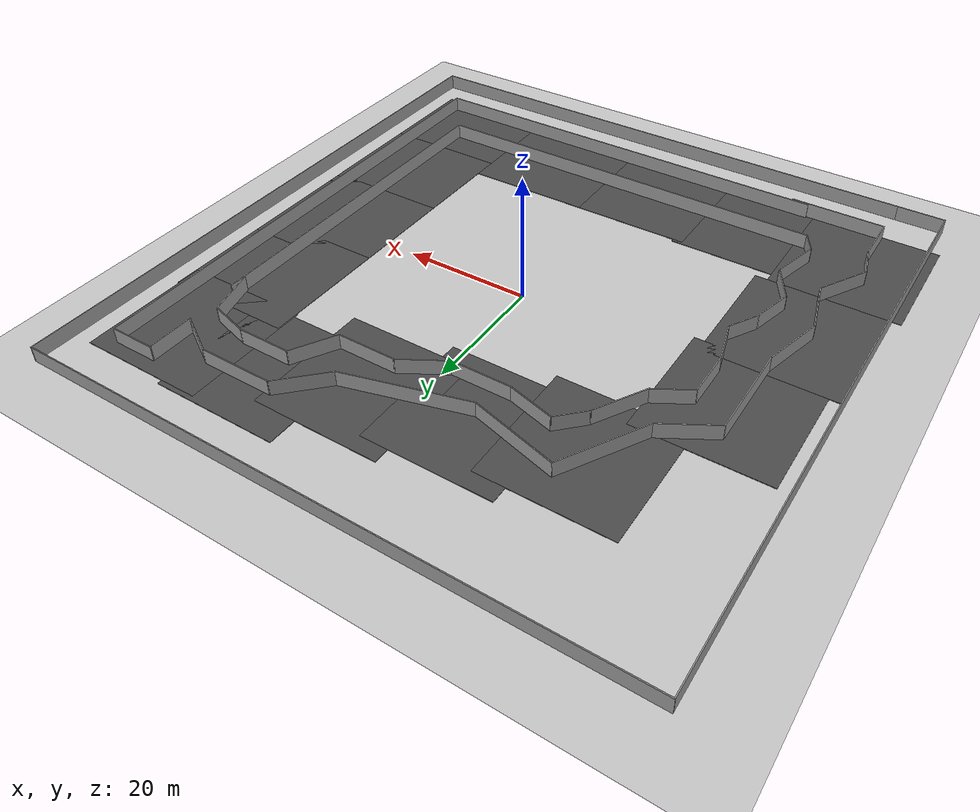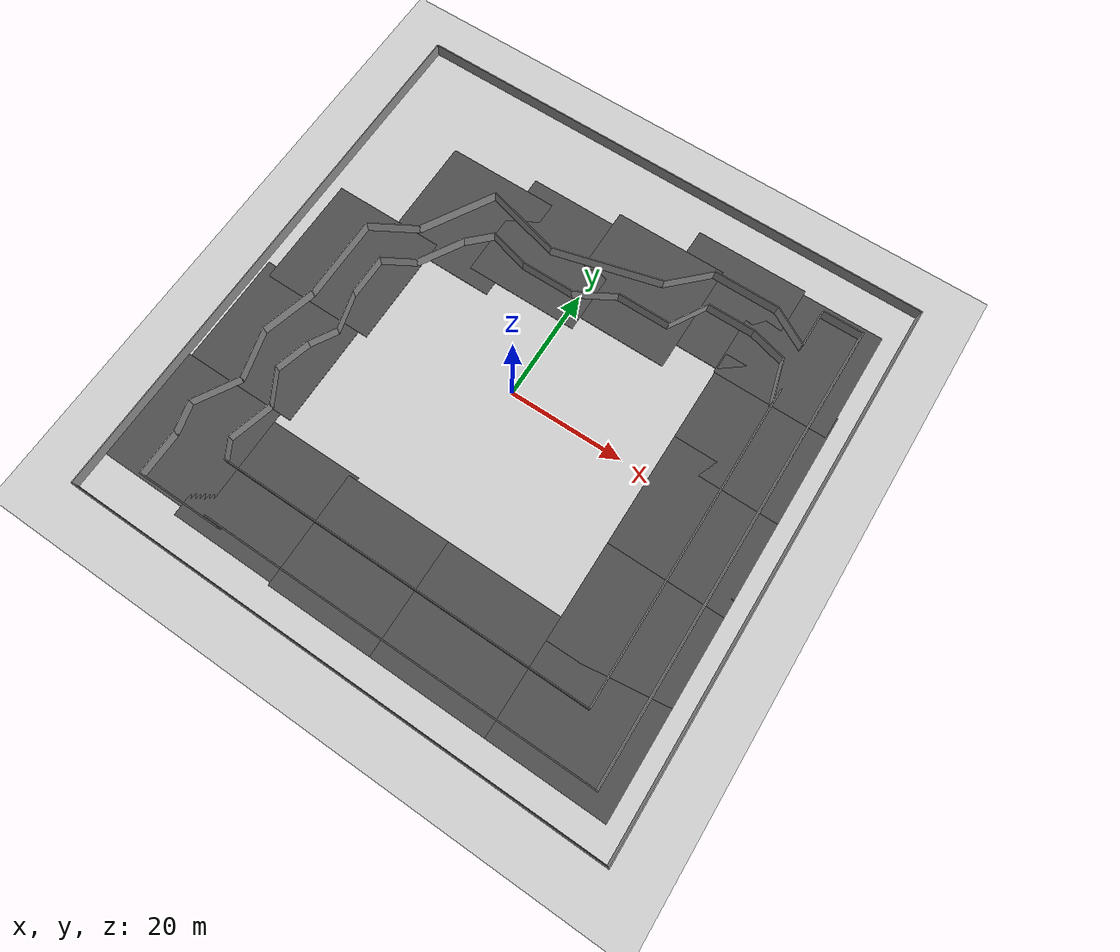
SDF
<sdf version="1.6">
 <world name="default">
  <light name="sun" type="directional">
   <pose>0 0 10 0 -0 0</pose>
   <diffuse>0.8 0.8 0.8 1</diffuse>
   <specular>0.1 0.1 0.1 1</specular>
   <attenuation>
    <range>1000</range>
    <constant>0.9</constant>
    <linear>0.01</linear>
    <quadratic>0.001</quadratic>
   </attenuation>
   <direction>-0.5 0.5 -1</direction>
  </light>
  <model name="ground_plane">
   <static>1</static>
   <link name="link">
    <collision name="collision">
     <geometry><plane><normal>0 0 1</normal><size>100 100</size></plane></geometry>
     <surface><friction><ode><mu>100</mu><mu2>50</mu2></ode></friction></surface>
    </collision>
    <visual name="visual">
     <cast_shadows>0</cast_shadows>
     <geometry><plane><normal>0 0 1</normal><size>100 100</size></plane></geometry>
     <material>
      <script><uri>file://media/materials/scripts/gazebo.material</uri><name>Gazebo/Grey</name></script>
     </material>
    </visual>
   </link>
  </model>
  <gravity>0 0 -9.8</gravity>
  <magnetic_field>6e-06 2.3e-05 -4.2e-05</magnetic_field>
  <atmosphere type="adiabatic"/>
  <physics name="default_physics" default="0" type="ode">
   <max_step_size>0.001</max_step_size>
   <real_time_factor>1</real_time_factor>
   <real_time_update_rate>1000</real_time_update_rate>
  </physics>
  <scene><ambient>0.4 0.4 0.4 1</ambient><background>0.7 0.7 0.7 1</background><shadows>1</shadows></scene>
  <spherical_coordinates>
   <surface_model>EARTH_WGS84</surface_model>
   <latitude_deg>0</latitude_deg>
   <longitude_deg>0</longitude_deg>
   <elevation>0</elevation>
   <heading_deg>0</heading_deg>
  </spherical_coordinates>
  <model name="Untitled_1">
   <pose>0.34738 -1.0782 0 0 -0 0</pose>
   <link name="Wall_90">
    <collision name="Wall_90_Collision">
     <geometry><box><size>87.5 0.15 2.5</size></box></geometry>
     <pose>0 0 1.25 0 -0 0</pose>
    </collision>
    <visual name="Wall_90_Visual">
     <pose>0 0 1.25 0 -0 0</pose>
     <geometry><box><size>87.5 0.15 2.5</size></box></geometry>
     <material>
      <script><uri>file://media/materials/scripts/gazebo.material</uri><name>Gazebo/Grey</name></script>
      <ambient>1 1 1 1</ambient>
     </material>
    </visual>
    <pose>3.75 -48.175 0 0 -0 0</pose>
   </link>
   <link name="Wall_91">
    <collision name="Wall_91_Collision">
     <geometry><box><size>96.5 0.15 2.5</size></box></geometry>
     <pose>0 0 1.25 0 -0 0</pose>
    </collision>
    <visual name="Wall_91_Visual">
     <pose>0 0 1.25 0 -0 0</pose>
     <geometry><box><size>96.5 0.15 2.5</size></box></geometry>
     <material>
      <script><uri>file://media/materials/scripts/gazebo.material</uri><name>Gazebo/Grey</name></script>
      <ambient>1 1 1 1</ambient>
     </material>
    </visual>
    <pose>47.425 0 0 0 -0 1.5708</pose>
   </link>
   <link name="Wall_92">
    <collision name="Wall_92_Collision">
     <geometry><box><size>95 0.15 2.5</size></box></geometry>
     <pose>0 0 1.25 0 -0 0</pose>
    </collision>
    <visual name="Wall_92_Visual">
     <pose>0 0 1.25 0 -0 0</pose>
     <geometry><box><size>95 0.15 2.5</size></box></geometry>
     <material>
      <script><uri>file://media/materials/scripts/gazebo.material</uri><name>Gazebo/Grey</name></script>
      <ambient>1 1 1 1</ambient>
     </material>
    </visual>
    <pose>0 48.175 0 0 -0 3.14159</pose>
   </link>
   <link name="Wall_93">
    <collision name="Wall_93_Collision">
     <geometry><box><size>96.5 0.15 2.5</size></box></geometry>
     <pose>0 0 1.25 0 -0 0</pose>
    </collision>
    <visual name="Wall_93_Visual">
     <pose>0 0 1.25 0 -0 0</pose>
     <geometry><box><size>96.5 0.15 2.5</size></box></geometry>
     <material>
      <script><uri>file://media/materials/scripts/gazebo.material</uri><name>Gazebo/Grey</name></script>
      <ambient>1 1 1 1</ambient>
     </material>
    </visual>
    <pose>-47.425 0 0 0 0 -1.5708</pose>
   </link>
   <link name="Wall_94">
    <collision name="Wall_94_Collision">
     <geometry><box><size>9.75 0.15 2.5</size></box></geometry>
     <pose>0 0 1.25 0 -0 0</pose>
    </collision>
    <visual name="Wall_94_Visual">
     <pose>0 0 1.25 0 -0 0</pose>
     <geometry><box><size>9.75 0.15 2.5</size></box></geometry>
     <material>
      <script><uri>file://media/materials/scripts/gazebo.material</uri><name>Gazebo/Grey</name></script>
      <ambient>1 1 1 1</ambient>
     </material>
    </visual>
    <pose>-42.625 -48.175 0 0 -0 0</pose>
   </link>
   <static>1</static>
  </model>
  <model name="Untitled">
   <pose>0.3022 -1.9187 0 0 -0 0</pose>
   <link name="Wall_10">
    <collision name="Wall_10_Collision">
     <geometry><box><size>7.25 0.15 2.5</size></box></geometry>
     <pose>0 0 1.25 0 -0 0</pose>
    </collision>
    <visual name="Wall_10_Visual">
     <pose>0 0 1.25 0 -0 0</pose>
     <geometry><box><size>7.25 0.15 2.5</size></box></geometry>
     <material>
      <script><uri>file://media/materials/scripts/gazebo.material</uri><name>Gazebo/Grey</name></script>
      <ambient>1 1 1 1</ambient>
     </material>
    </visual>
    <pose>34.1579 36.922 0 0 0 -1.5708</pose>
   </link>
   <link name="Wall_11">
    <collision name="Wall_11_Collision">
     <geometry><box><size>7.5 0.15 2.5</size></box></geometry>
     <pose>0 0 1.25 0 -0 0</pose>
    </collision>
    <visual name="Wall_11_Visual">
     <pose>0 0 1.25 0 -0 0</pose>
     <geometry><box><size>7.5 0.15 2.5</size></box></geometry>
     <material>
      <script><uri>file://media/materials/scripts/gazebo.material</uri><name>Gazebo/Grey</name></script>
      <ambient>1 1 1 1</ambient>
     </material>
    </visual>
    <pose>30.9752 35.2095 0 0 -0 2.61799</pose>
   </link>
   <link name="Wall_12">
    <collision name="Wall_12_Collision">
     <geometry><box><size>11.75 0.15 2.5</size></box></geometry>
     <pose>0 0 1.25 0 -0 0</pose>
    </collision>
    <visual name="Wall_12_Visual">
     <pose>0 0 1.25 0 -0 0</pose>
     <geometry><box><size>11.75 0.15 2.5</size></box></geometry>
     <material>
      <script><uri>file://media/materials/scripts/gazebo.material</uri><name>Gazebo/Grey</name></script>
      <ambient>1 1 1 1</ambient>
     </material>
    </visual>
    <pose>21.9926 37.047 0 0 -0 3.14159</pose>
   </link>
   <link name="Wall_13">
    <collision name="Wall_13_Collision">
     <geometry><box><size>8.75 0.15 2.5</size></box></geometry>
     <pose>0 0 1.25 0 -0 0</pose>
    </collision>
    <visual name="Wall_13_Visual">
     <pose>0 0 1.25 0 -0 0</pose>
     <geometry><box><size>8.75 0.15 2.5</size></box></geometry>
     <material>
      <script><uri>file://media/materials/scripts/gazebo.material</uri><name>Gazebo/Grey</name></script>
      <ambient>1 1 1 1</ambient>
     </material>
    </visual>
    <pose>13.152 34.0064 0 0 0 -2.35619</pose>
   </link>
   <link name="Wall_14">
    <collision name="Wall_14_Collision">
     <geometry><box><size>19.5 0.15 2.5</size></box></geometry>
     <pose>0 0 1.25 0 -0 0</pose>
    </collision>
    <visual name="Wall_14_Visual">
     <pose>0 0 1.25 0 -0 0</pose>
     <geometry><box><size>19.5 0.15 2.5</size></box></geometry>
     <material>
      <script><uri>file://media/materials/scripts/gazebo.material</uri><name>Gazebo/Grey</name></script>
      <ambient>1 1 1 1</ambient>
     </material>
    </visual>
    <pose>0.766131 28.4618 0 0 0 -2.87979</pose>
   </link>
   <link name="Wall_15">
    <collision name="Wall_15_Collision">
     <geometry><box><size>14 0.15 2.5</size></box></geometry>
     <pose>0 0 1.25 0 -0 0</pose>
    </collision>
    <visual name="Wall_15_Visual">
     <pose>0 0 1.25 0 -0 0</pose>
     <geometry><box><size>14 0.15 2.5</size></box></geometry>
     <material>
      <script><uri>file://media/materials/scripts/gazebo.material</uri><name>Gazebo/Grey</name></script>
      <ambient>1 1 1 1</ambient>
     </material>
    </visual>
    <pose>-15.2682 27.75 0 0 -0 2.87979</pose>
   </link>
   <link name="Wall_16">
    <collision name="Wall_16_Collision">
     <geometry><box><size>14.25 0.15 2.5</size></box></geometry>
     <pose>0 0 1.25 0 -0 0</pose>
    </collision>
    <visual name="Wall_16_Visual">
     <pose>0 0 1.25 0 -0 0</pose>
     <geometry><box><size>14.25 0.15 2.5</size></box></geometry>
     <material>
      <script><uri>file://media/materials/scripts/gazebo.material</uri><name>Gazebo/Grey</name></script>
      <ambient>1 1 1 1</ambient>
     </material>
    </visual>
    <pose>-25.4823 23.4369 0 0 0 -2.0944</pose>
   </link>
   <link name="Wall_17">
    <collision name="Wall_17_Collision">
     <geometry><box><size>9 0.15 2.5</size></box></geometry>
     <pose>0 0 1.25 0 -0 0</pose>
    </collision>
    <visual name="Wall_17_Visual">
     <pose>0 0 1.25 0 -0 0</pose>
     <geometry><box><size>9 0.15 2.5</size></box></geometry>
     <material>
      <script><uri>file://media/materials/scripts/gazebo.material</uri><name>Gazebo/Grey</name></script>
      <ambient>1 1 1 1</ambient>
     </material>
    </visual>
    <pose>-32.8394 15.1189 0 0 0 -2.61799</pose>
   </link>
   <link name="Wall_18">
    <collision name="Wall_18_Collision">
     <geometry><box><size>15 0.15 2.5</size></box></geometry>
     <pose>0 0 1.25 0 -0 0</pose>
    </collision>
    <visual name="Wall_18_Visual">
     <pose>0 0 1.25 0 -0 0</pose>
     <geometry><box><size>15 0.15 2.5</size></box></geometry>
     <material>
      <script><uri>file://media/materials/scripts/gazebo.material</uri><name>Gazebo/Grey</name></script>
      <ambient>1 1 1 1</ambient>
     </material>
    </visual>
    <pose>-36.6716 5.48138 0 0 0 -1.5708</pose>
   </link>
   <link name="Wall_19">
    <collision name="Wall_19_Collision">
     <geometry><box><size>10 0.15 2.5</size></box></geometry>
     <pose>0 0 1.25 0 -0 0</pose>
    </collision>
    <visual name="Wall_19_Visual">
     <pose>0 0 1.25 0 -0 0</pose>
     <geometry><box><size>10 0.15 2.5</size></box></geometry>
     <material>
      <script><uri>file://media/materials/scripts/gazebo.material</uri><name>Gazebo/Grey</name></script>
      <ambient>1 1 1 1</ambient>
     </material>
    </visual>
    <pose>-37.9463 -6.70081 0 0 0 -1.8326</pose>
   </link>
   <link name="Wall_20">
    <collision name="Wall_20_Collision">
     <geometry><box><size>9 0.15 2.5</size></box></geometry>
     <pose>0 0 1.25 0 -0 0</pose>
    </collision>
    <visual name="Wall_20_Visual">
     <pose>0 0 1.25 0 -0 0</pose>
     <geometry><box><size>9 0.15 2.5</size></box></geometry>
     <material>
      <script><uri>file://media/materials/scripts/gazebo.material</uri><name>Gazebo/Grey</name></script>
      <ambient>1 1 1 1</ambient>
     </material>
    </visual>
    <pose>-38.0757 -15.7322 0 0 0 -1.309</pose>
   </link>
   <link name="Wall_21">
    <collision name="Wall_21_Collision">
     <geometry><box><size>8.75 0.15 2.5</size></box></geometry>
     <pose>0 0 1.25 0 -0 0</pose>
    </collision>
    <visual name="Wall_21_Visual">
     <pose>0 0 1.25 0 -0 0</pose>
     <geometry><box><size>8.75 0.15 2.5</size></box></geometry>
     <material>
      <script><uri>file://media/materials/scripts/gazebo.material</uri><name>Gazebo/Grey</name></script>
      <ambient>1 1 1 1</ambient>
     </material>
    </visual>
    <pose>-39.0804 -23.7303 0 0 0 -2.0944</pose>
   </link>
   <link name="Wall_22">
    <collision name="Wall_22_Collision">
     <geometry><box><size>5.5 0.15 2.5</size></box></geometry>
     <pose>0 0 1.25 0 -0 0</pose>
    </collision>
    <visual name="Wall_22_Visual">
     <pose>0 0 1.25 0 -0 0</pose>
     <geometry><box><size>5.5 0.15 2.5</size></box></geometry>
     <material>
      <script><uri>file://media/materials/scripts/gazebo.material</uri><name>Gazebo/Grey</name></script>
      <ambient>1 1 1 1</ambient>
     </material>
    </visual>
    <pose>-40.5381 -30.0381 0 0 0 -1.309</pose>
   </link>
   <link name="Wall_23">
    <collision name="Wall_23_Collision">
     <geometry><box><size>8 0.15 2.5</size></box></geometry>
     <pose>0 0 1.25 0 -0 0</pose>
    </collision>
    <visual name="Wall_23_Visual">
     <pose>0 0 1.25 0 -0 0</pose>
     <geometry><box><size>8 0.15 2.5</size></box></geometry>
     <material>
      <script><uri>file://media/materials/scripts/gazebo.material</uri><name>Gazebo/Grey</name></script>
      <ambient>1 1 1 1</ambient>
     </material>
    </visual>
    <pose>-39.8457 -36.547 0 0 0 -1.5708</pose>
   </link>
   <link name="Wall_24">
    <collision name="Wall_24_Collision">
     <geometry><box><size>15 0.15 2.5</size></box></geometry>
     <pose>0 0 1.25 0 -0 0</pose>
    </collision>
    <visual name="Wall_24_Visual">
     <pose>0 0 1.25 0 -0 0</pose>
     <geometry><box><size>15 0.15 2.5</size></box></geometry>
     <material>
      <script><uri>file://media/materials/scripts/gazebo.material</uri><name>Gazebo/Grey</name></script>
      <ambient>1 1 1 1</ambient>
     </material>
    </visual>
    <pose>-32.4207 -40.472 0 0 -0 0</pose>
   </link>
   <link name="Wall_26">
    <collision name="Wall_26_Collision">
     <geometry><box><size>56.75 0.15 2.5</size></box></geometry>
     <pose>0 0 1.25 0 -0 0</pose>
    </collision>
    <visual name="Wall_26_Visual">
     <pose>0 0 1.25 0 -0 0</pose>
     <geometry><box><size>56.75 0.15 2.5</size></box></geometry>
     <material>
      <script><uri>file://media/materials/scripts/gazebo.material</uri><name>Gazebo/Grey</name></script>
      <ambient>1 1 1 1</ambient>
     </material>
    </visual>
    <pose>34.8108 -3.44889 0 0 0 -1.5708</pose>
   </link>
   <link name="Wall_27">
    <collision name="Wall_27_Collision">
     <geometry><box><size>65.5 0.15 2.5</size></box></geometry>
     <pose>0 0 1.25 0 -0 0</pose>
    </collision>
    <visual name="Wall_27_Visual">
     <pose>0 0 1.25 0 -0 0</pose>
     <geometry><box><size>65.5 0.15 2.5</size></box></geometry>
     <material>
      <script><uri>file://media/materials/scripts/gazebo.material</uri><name>Gazebo/Grey</name></script>
      <ambient>1 1 1 1</ambient>
     </material>
    </visual>
    <pose>2.13575 -31.7489 0 0 -0 3.14159</pose>
   </link>
   <link name="Wall_28">
    <collision name="Wall_28_Collision">
     <geometry><box><size>3.75 0.15 2.5</size></box></geometry>
     <pose>0 0 1.25 0 -0 0</pose>
    </collision>
    <visual name="Wall_28_Visual">
     <pose>0 0 1.25 0 -0 0</pose>
     <geometry><box><size>3.75 0.15 2.5</size></box></geometry>
     <material>
      <script><uri>file://media/materials/scripts/gazebo.material</uri><name>Gazebo/Grey</name></script>
      <ambient>1 1 1 1</ambient>
     </material>
    </visual>
    <pose>-31.4392 -30.19 0 0 -0 2.0944</pose>
   </link>
   <link name="Wall_29">
    <collision name="Wall_29_Collision">
     <geometry><box><size>8 0.15 2.5</size></box></geometry>
     <pose>0 0 1.25 0 -0 0</pose>
    </collision>
    <visual name="Wall_29_Visual">
     <pose>0 0 1.25 0 -0 0</pose>
     <geometry><box><size>8 0.15 2.5</size></box></geometry>
     <material>
      <script><uri>file://media/materials/scripts/gazebo.material</uri><name>Gazebo/Grey</name></script>
      <ambient>1 1 1 1</ambient>
     </material>
    </visual>
    <pose>-31.3234 -24.8399 0 0 -0 1.309</pose>
   </link>
   <link name="Wall_30">
    <collision name="Wall_30_Collision">
     <geometry><box><size>6.5 0.15 2.5</size></box></geometry>
     <pose>0 0 1.25 0 -0 0</pose>
    </collision>
    <visual name="Wall_30_Visual">
     <pose>0 0 1.25 0 -0 0</pose>
     <geometry><box><size>6.5 0.15 2.5</size></box></geometry>
     <material>
      <script><uri>file://media/materials/scripts/gazebo.material</uri><name>Gazebo/Grey</name></script>
      <ambient>1 1 1 1</ambient>
     </material>
    </visual>
    <pose>-31.895 -18.2991 0 0 -0 2.0944</pose>
   </link>
   <link name="Wall_31">
    <collision name="Wall_31_Collision">
     <geometry><box><size>6.5 0.15 2.5</size></box></geometry>
     <pose>0 0 1.25 0 -0 0</pose>
    </collision>
    <visual name="Wall_31_Visual">
     <pose>0 0 1.25 0 -0 0</pose>
     <geometry><box><size>6.5 0.15 2.5</size></box></geometry>
     <material>
      <script><uri>file://media/materials/scripts/gazebo.material</uri><name>Gazebo/Grey</name></script>
      <ambient>1 1 1 1</ambient>
     </material>
    </visual>
    <pose>-32.6608 -12.4826 0 0 -0 1.309</pose>
   </link>
   <link name="Wall_32">
    <collision name="Wall_32_Collision">
     <geometry><box><size>5.25 0.15 2.5</size></box></geometry>
     <pose>0 0 1.25 0 -0 0</pose>
    </collision>
    <visual name="Wall_32_Visual">
     <pose>0 0 1.25 0 -0 0</pose>
     <geometry><box><size>5.25 0.15 2.5</size></box></geometry>
     <material>
      <script><uri>file://media/materials/scripts/gazebo.material</uri><name>Gazebo/Grey</name></script>
      <ambient>1 1 1 1</ambient>
     </material>
    </visual>
    <pose>-30.564 -7.20743 0 0 -0 1.0472</pose>
   </link>
   <link name="Wall_33">
    <collision name="Wall_33_Collision">
     <geometry><box><size>7 0.15 2.5</size></box></geometry>
     <pose>0 0 1.25 0 -0 0</pose>
    </collision>
    <visual name="Wall_33_Visual">
     <pose>0 0 1.25 0 -0 0</pose>
     <geometry><box><size>7 0.15 2.5</size></box></geometry>
     <material>
      <script><uri>file://media/materials/scripts/gazebo.material</uri><name>Gazebo/Grey</name></script>
      <ambient>1 1 1 1</ambient>
     </material>
    </visual>
    <pose>-30.1755 -1.69077 0 0 -0 1.8326</pose>
   </link>
   <link name="Wall_34">
    <collision name="Wall_34_Collision">
     <geometry><box><size>7.5 0.15 2.5</size></box></geometry>
     <pose>0 0 1.25 0 -0 0</pose>
    </collision>
    <visual name="Wall_34_Visual">
     <pose>0 0 1.25 0 -0 0</pose>
     <geometry><box><size>7.5 0.15 2.5</size></box></geometry>
     <material>
      <script><uri>file://media/materials/scripts/gazebo.material</uri><name>Gazebo/Grey</name></script>
      <ambient>1 1 1 1</ambient>
     </material>
    </visual>
    <pose>-31.0619 5.29253 0 0 -0 1.5708</pose>
   </link>
   <link name="Wall_35">
    <collision name="Wall_35_Collision">
     <geometry><box><size>6.25 0.15 2.5</size></box></geometry>
     <pose>0 0 1.25 0 -0 0</pose>
    </collision>
    <visual name="Wall_35_Visual">
     <pose>0 0 1.25 0 -0 0</pose>
     <geometry><box><size>6.25 0.15 2.5</size></box></geometry>
     <material>
      <script><uri>file://media/materials/scripts/gazebo.material</uri><name>Gazebo/Grey</name></script>
      <ambient>1 1 1 1</ambient>
     </material>
    </visual>
    <pose>-28.4205 10.4925 0 0 -0 0.523599</pose>
   </link>
   <link name="Wall_36">
    <collision name="Wall_36_Collision">
     <geometry><box><size>8.75 0.15 2.5</size></box></geometry>
     <pose>0 0 1.25 0 -0 0</pose>
    </collision>
    <visual name="Wall_36_Visual">
     <pose>0 0 1.25 0 -0 0</pose>
     <geometry><box><size>8.75 0.15 2.5</size></box></geometry>
     <material>
      <script><uri>file://media/materials/scripts/gazebo.material</uri><name>Gazebo/Grey</name></script>
      <ambient>1 1 1 1</ambient>
     </material>
    </visual>
    <pose>-23.6292 15.7414 0 0 -0 1.0472</pose>
   </link>
   <link name="Wall_37">
    <collision name="Wall_37_Collision">
     <geometry><box><size>5.25 0.15 2.5</size></box></geometry>
     <pose>0 0 1.25 0 -0 0</pose>
    </collision>
    <visual name="Wall_37_Visual">
     <pose>0 0 1.25 0 -0 0</pose>
     <geometry><box><size>5.25 0.15 2.5</size></box></geometry>
     <material>
      <script><uri>file://media/materials/scripts/gazebo.material</uri><name>Gazebo/Grey</name></script>
      <ambient>1 1 1 1</ambient>
     </material>
    </visual>
    <pose>-19.6761 21.2685 0 0 -0 0.785398</pose>
   </link>
   <link name="Wall_38">
    <collision name="Wall_38_Collision">
     <geometry><box><size>7.5 0.15 2.5</size></box></geometry>
     <pose>0 0 1.25 0 -0 0</pose>
    </collision>
    <visual name="Wall_38_Visual">
     <pose>0 0 1.25 0 -0 0</pose>
     <geometry><box><size>7.5 0.15 2.5</size></box></geometry>
     <material>
      <script><uri>file://media/materials/scripts/gazebo.material</uri><name>Gazebo/Grey</name></script>
      <ambient>1 1 1 1</ambient>
     </material>
    </visual>
    <pose>-14.3232 22.1204 0 0 0 -0.261799</pose>
   </link>
   <link name="Wall_39">
    <collision name="Wall_39_Collision">
     <geometry><box><size>9.5 0.15 2.5</size></box></geometry>
     <pose>0 0 1.25 0 -0 0</pose>
    </collision>
    <visual name="Wall_39_Visual">
     <pose>0 0 1.25 0 -0 0</pose>
     <geometry><box><size>9.5 0.15 2.5</size></box></geometry>
     <material>
      <script><uri>file://media/materials/scripts/gazebo.material</uri><name>Gazebo/Grey</name></script>
      <ambient>1 1 1 1</ambient>
     </material>
    </visual>
    <pose>-6.09837 21.1693 0 0 -0 0</pose>
   </link>
   <link name="Wall_40">
    <collision name="Wall_40_Collision">
     <geometry><box><size>7.75 0.15 2.5</size></box></geometry>
     <pose>0 0 1.25 0 -0 0</pose>
    </collision>
    <visual name="Wall_40_Visual">
     <pose>0 0 1.25 0 -0 0</pose>
     <geometry><box><size>7.75 0.15 2.5</size></box></geometry>
     <material>
      <script><uri>file://media/materials/scripts/gazebo.material</uri><name>Gazebo/Grey</name></script>
      <ambient>1 1 1 1</ambient>
     </material>
    </visual>
    <pose>1.86752 23.0693 0 0 -0 0.523599</pose>
   </link>
   <link name="Wall_41">
    <collision name="Wall_41_Collision">
     <geometry><box><size>9.5 0.15 2.5</size></box></geometry>
     <pose>0 0 1.25 0 -0 0</pose>
    </collision>
    <visual name="Wall_41_Visual">
     <pose>0 0 1.25 0 -0 0</pose>
     <geometry><box><size>9.5 0.15 2.5</size></box></geometry>
     <material>
      <script><uri>file://media/materials/scripts/gazebo.material</uri><name>Gazebo/Grey</name></script>
      <ambient>1 1 1 1</ambient>
     </material>
    </visual>
    <pose>9.83342 24.9693 0 0 -0 0</pose>
   </link>
   <link name="Wall_42">
    <collision name="Wall_42_Collision">
     <geometry><box><size>7.5 0.15 2.5</size></box></geometry>
     <pose>0 0 1.25 0 -0 0</pose>
    </collision>
    <visual name="Wall_42_Visual">
     <pose>0 0 1.25 0 -0 0</pose>
     <geometry><box><size>7.5 0.15 2.5</size></box></geometry>
     <material>
      <script><uri>file://media/materials/scripts/gazebo.material</uri><name>Gazebo/Grey</name></script>
      <ambient>1 1 1 1</ambient>
     </material>
    </visual>
    <pose>16.3459 28.1519 0 0 -0 1.0472</pose>
   </link>
   <link name="Wall_43">
    <collision name="Wall_43_Collision">
     <geometry><box><size>8.5 0.15 2.5</size></box></geometry>
     <pose>0 0 1.25 0 -0 0</pose>
    </collision>
    <visual name="Wall_43_Visual">
     <pose>0 0 1.25 0 -0 0</pose>
     <geometry><box><size>8.5 0.15 2.5</size></box></geometry>
     <material>
      <script><uri>file://media/materials/scripts/gazebo.material</uri><name>Gazebo/Grey</name></script>
      <ambient>1 1 1 1</ambient>
     </material>
    </visual>
    <pose>22.3584 31.3346 0 0 -0 0</pose>
   </link>
   <link name="Wall_44">
    <collision name="Wall_44_Collision">
     <geometry><box><size>6.5 0.15 2.5</size></box></geometry>
     <pose>0 0 1.25 0 -0 0</pose>
    </collision>
    <visual name="Wall_44_Visual">
     <pose>0 0 1.25 0 -0 0</pose>
     <geometry><box><size>6.5 0.15 2.5</size></box></geometry>
     <material>
      <script><uri>file://media/materials/scripts/gazebo.material</uri><name>Gazebo/Grey</name></script>
      <ambient>1 1 1 1</ambient>
     </material>
    </visual>
    <pose>29.6002 30.5128 0 0 0 -0.261799</pose>
   </link>
   <link name="Wall_45">
    <collision name="Wall_45_Collision">
     <geometry><box><size>7.75 0.15 2.5</size></box></geometry>
     <pose>0 0 1.25 0 -0 0</pose>
    </collision>
    <visual name="Wall_45_Visual">
     <pose>0 0 1.25 0 -0 0</pose>
     <geometry><box><size>7.75 0.15 2.5</size></box></geometry>
     <material>
      <script><uri>file://media/materials/scripts/gazebo.material</uri><name>Gazebo/Grey</name></script>
      <ambient>1 1 1 1</ambient>
     </material>
    </visual>
    <pose>33.6506 26.0205 0 0 0 -1.309</pose>
   </link>
   <link name="Wall_7">
    <collision name="Wall_7_Collision">
     <geometry><box><size>69 0.15 2.5</size></box></geometry>
     <pose>0 0 1.25 0 -0 0</pose>
    </collision>
    <visual name="Wall_7_Visual">
     <pose>0 0 1.25 0 -0 0</pose>
     <geometry><box><size>69 0.15 2.5</size></box></geometry>
     <material>
      <script><uri>file://media/materials/scripts/gazebo.material</uri><name>Gazebo/Grey</name></script>
      <ambient>1 1 1 1</ambient>
     </material>
    </visual>
    <pose>6.83287 -40.128 0 0 -0 0</pose>
   </link>
   <link name="Wall_8">
    <collision name="Wall_8_Collision">
     <geometry><box><size>80.75 0.15 2.5</size></box></geometry>
     <pose>0 0 1.25 0 -0 0</pose>
    </collision>
    <visual name="Wall_8_Visual">
     <pose>0 0 1.25 0 -0 0</pose>
     <geometry><box><size>80.75 0.15 2.5</size></box></geometry>
     <material>
      <script><uri>file://media/materials/scripts/gazebo.material</uri><name>Gazebo/Grey</name></script>
      <ambient>1 1 1 1</ambient>
     </material>
    </visual>
    <pose>41.2579 0.171957 0 0 -0 1.5708</pose>
   </link>
   <link name="Wall_9">
    <collision name="Wall_9_Collision">
     <geometry><box><size>7.25 0.15 2.5</size></box></geometry>
     <pose>0 0 1.25 0 -0 0</pose>
    </collision>
    <visual name="Wall_9_Visual">
     <pose>0 0 1.25 0 -0 0</pose>
     <geometry><box><size>7.25 0.15 2.5</size></box></geometry>
     <material>
      <script><uri>file://media/materials/scripts/gazebo.material</uri><name>Gazebo/Grey</name></script>
      <ambient>1 1 1 1</ambient>
     </material>
    </visual>
    <pose>37.7079 40.472 0 0 -0 3.14159</pose>
   </link>
   <static>1</static>
  </model>
  <model name="asphalt_plane">
   <static>1</static>
   <link name="link">
    <collision name="collision"><geometry><box><size>20 20 0.1</size></box></geometry></collision>
    <visual name="visual">
     <cast_shadows>0</cast_shadows>
     <geometry><box><size>20 20 0.1</size></box></geometry>
     <material>
      <script>
       <uri>model://asphalt_plane/materials/scripts</uri>
       <uri>model://asphalt_plane/materials/textures</uri>
       <name>vrc/asphalt</name>
      </script>
     </material>
    </visual>
   </link>
   <pose>34.7925 30.7103 0 0 -0 0</pose>
  </model>
  <model name="asphalt_plane_clone">
   <static>1</static>
   <link name="link">
    <collision name="collision"><geometry><box><size>20 20 0.1</size></box></geometry></collision>
    <visual name="visual">
     <cast_shadows>0</cast_shadows>
     <geometry><box><size>20 20 0.1</size></box></geometry>
     <material>
      <script>
       <uri>model://asphalt_plane/materials/scripts</uri>
       <uri>model://asphalt_plane/materials/textures</uri>
       <name>vrc/asphalt</name>
      </script>
     </material>
    </visual>
   </link>
   <pose>35 14.5385 0 0 -0 0</pose>
  </model>
  <model name="asphalt_plane_clone_0">
   <static>1</static>
   <link name="link">
    <collision name="collision"><geometry><box><size>20 20 0.1</size></box></geometry></collision>
    <visual name="visual">
     <cast_shadows>0</cast_shadows>
     <geometry><box><size>20 20 0.1</size></box></geometry>
     <material>
      <script>
       <uri>model://asphalt_plane/materials/scripts</uri>
       <uri>model://asphalt_plane/materials/textures</uri>
       <name>vrc/asphalt</name>
      </script>
     </material>
    </visual>
   </link>
   <pose>35 -2 0 0 -0 0</pose>
  </model>
  <model name="asphalt_plane_clone_1">
   <static>1</static>
   <link name="link">
    <collision name="collision"><geometry><box><size>20 20 0.1</size></box></geometry></collision>
    <visual name="visual">
     <cast_shadows>0</cast_shadows>
     <geometry><box><size>20 20 0.1</size></box></geometry>
     <material>
      <script>
       <uri>model://asphalt_plane/materials/scripts</uri>
       <uri>model://asphalt_plane/materials/textures</uri>
       <name>vrc/asphalt</name>
      </script>
     </material>
    </visual>
   </link>
   <pose>35 -19 0 0 -0 0</pose>
  </model>
  <model name="asphalt_plane_clone_2">
   <static>1</static>
   <link name="link">
    <collision name="collision"><geometry><box><size>20 20 0.1</size></box></geometry></collision>
    <visual name="visual">
     <cast_shadows>0</cast_shadows>
     <geometry><box><size>20 20 0.1</size></box></geometry>
     <material>
      <script>
       <uri>model://asphalt_plane/materials/scripts</uri>
       <uri>model://asphalt_plane/materials/textures</uri>
       <name>vrc/asphalt</name>
      </script>
     </material>
    </visual>
   </link>
   <pose>35 -35 0 0 -0 0</pose>
  </model>
  <model name="asphalt_plane_clone_3">
   <static>1</static>
   <link name="link">
    <collision name="collision"><geometry><box><size>20 20 0.1</size></box></geometry></collision>
    <visual name="visual">
     <cast_shadows>0</cast_shadows>
     <geometry><box><size>20 20 0.1</size></box></geometry>
     <material>
      <script>
       <uri>model://asphalt_plane/materials/scripts</uri>
       <uri>model://asphalt_plane/materials/textures</uri>
       <name>vrc/asphalt</name>
      </script>
     </material>
    </visual>
   </link>
   <pose>15 -35 0 0 -0 0</pose>
  </model>
  <model name="asphalt_plane_clone_4">
   <static>1</static>
   <link name="link">
    <collision name="collision"><geometry><box><size>20 20 0.1</size></box></geometry></collision>
    <visual name="visual">
     <cast_shadows>0</cast_shadows>
     <geometry><box><size>20 20 0.1</size></box></geometry>
     <material>
      <script>
       <uri>model://asphalt_plane/materials/scripts</uri>
       <uri>model://asphalt_plane/materials/textures</uri>
       <name>vrc/asphalt</name>
      </script>
     </material>
    </visual>
   </link>
   <pose>-3.56849 -35 0 0 -0 0</pose>
  </model>
  <model name="asphalt_plane_clone_5">
   <static>1</static>
   <link name="link">
    <collision name="collision"><geometry><box><size>20 20 0.1</size></box></geometry></collision>
    <visual name="visual">
     <cast_shadows>0</cast_shadows>
     <geometry><box><size>20 20 0.1</size></box></geometry>
     <material>
      <script>
       <uri>model://asphalt_plane/materials/scripts</uri>
       <uri>model://asphalt_plane/materials/textures</uri>
       <name>vrc/asphalt</name>
      </script>
     </material>
    </visual>
   </link>
   <pose>-22 -34.5088 0 0 -0 0</pose>
  </model>
  <model name="asphalt_plane_clone_6">
   <static>1</static>
   <link name="link">
    <collision name="collision"><geometry><box><size>20 20 0.1</size></box></geometry></collision>
    <visual name="visual">
     <cast_shadows>0</cast_shadows>
     <geometry><box><size>20 20 0.1</size></box></geometry>
     <material>
      <script>
       <uri>model://asphalt_plane/materials/scripts</uri>
       <uri>model://asphalt_plane/materials/textures</uri>
       <name>vrc/asphalt</name>
      </script>
     </material>
    </visual>
   </link>
   <pose>-38.4792 -33 0 0 -0 0</pose>
  </model>
  <model name="asphalt_plane_clone_7">
   <static>1</static>
   <link name="link">
    <collision name="collision"><geometry><box><size>20 20 0.1</size></box></geometry></collision>
    <visual name="visual">
     <cast_shadows>0</cast_shadows>
     <geometry><box><size>20 20 0.1</size></box></geometry>
     <material>
      <script>
       <uri>model://asphalt_plane/materials/scripts</uri>
       <uri>model://asphalt_plane/materials/textures</uri>
       <name>vrc/asphalt</name>
      </script>
     </material>
    </visual>
   </link>
   <pose>-36.572 -13 0 0 -0 0</pose>
  </model>
  <model name="asphalt_plane_clone_8">
   <static>1</static>
   <link name="link">
    <collision name="collision"><geometry><box><size>20 20 0.1</size></box></geometry></collision>
    <visual name="visual">
     <cast_shadows>0</cast_shadows>
     <geometry><box><size>20 20 0.1</size></box></geometry>
     <material>
      <script>
       <uri>model://asphalt_plane/materials/scripts</uri>
       <uri>model://asphalt_plane/materials/textures</uri>
       <name>vrc/asphalt</name>
      </script>
     </material>
    </visual>
   </link>
   <pose>-35 5 0 0 -0 0</pose>
  </model>
  <model name="asphalt_plane_clone_9">
   <static>1</static>
   <link name="link">
    <collision name="collision"><geometry><box><size>20 20 0.1</size></box></geometry></collision>
    <visual name="visual">
     <cast_shadows>0</cast_shadows>
     <geometry><box><size>20 20 0.1</size></box></geometry>
     <material>
      <script>
       <uri>model://asphalt_plane/materials/scripts</uri>
       <uri>model://asphalt_plane/materials/textures</uri>
       <name>vrc/asphalt</name>
      </script>
     </material>
    </visual>
   </link>
   <pose>-23 22 0 0 -0 0</pose>
  </model>
  <model name="asphalt_plane_clone_10">
   <static>1</static>
   <link name="link">
    <collision name="collision"><geometry><box><size>20 20 0.1</size></box></geometry></collision>
    <visual name="visual">
     <cast_shadows>0</cast_shadows>
     <geometry><box><size>20 20 0.1</size></box></geometry>
     <material>
      <script>
       <uri>model://asphalt_plane/materials/scripts</uri>
       <uri>model://asphalt_plane/materials/textures</uri>
       <name>vrc/asphalt</name>
      </script>
     </material>
    </visual>
   </link>
   <pose>-8 24.5962 0 0 -0 0</pose>
  </model>
  <model name="asphalt_plane_clone_11">
   <static>1</static>
   <link name="link">
    <collision name="collision"><geometry><box><size>20 20 0.1</size></box></geometry></collision>
    <visual name="visual">
     <cast_shadows>0</cast_shadows>
     <geometry><box><size>20 20 0.1</size></box></geometry>
     <material>
      <script>
       <uri>model://asphalt_plane/materials/scripts</uri>
       <uri>model://asphalt_plane/materials/textures</uri>
       <name>vrc/asphalt</name>
      </script>
     </material>
    </visual>
   </link>
   <pose>7.52115 27 0 0 -0 0</pose>
  </model>
  <model name="asphalt_plane_clone_12">
   <static>1</static>
   <link name="link">
    <collision name="collision"><geometry><box><size>20 20 0.1</size></box></geometry></collision>
    <visual name="visual">
     <cast_shadows>0</cast_shadows>
     <geometry><box><size>20 20 0.1</size></box></geometry>
     <material>
      <script>
       <uri>model://asphalt_plane/materials/scripts</uri>
       <uri>model://asphalt_plane/materials/textures</uri>
       <name>vrc/asphalt</name>
      </script>
     </material>
    </visual>
   </link>
   <pose>20.5172 31.4152 0 0 -0 0</pose>
  </model>
 </world>
</sdf>
